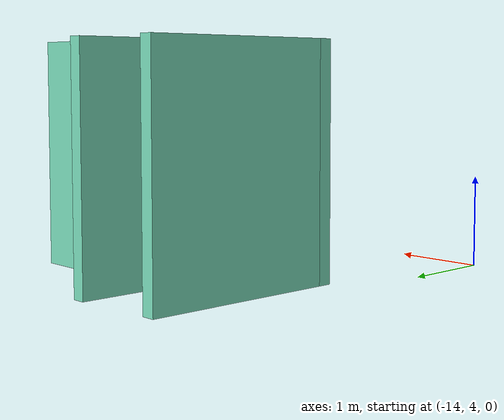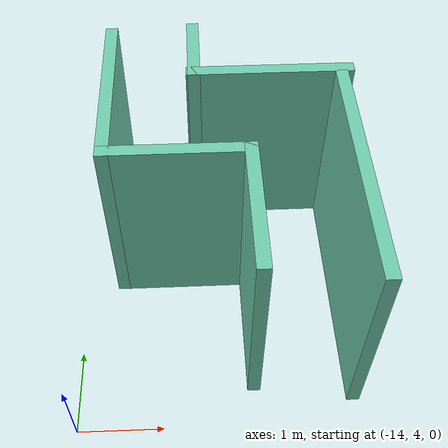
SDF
<?xml version='1.0'?>
<sdf version='1.6'>
  <model name='Lab1'>
    <pose frame=''>-12.1198 6.26782 0 0 -0 0</pose>
    <link name='Wall_12'>
      <collision name='Wall_12_Collision'>
        <geometry>
          <box>
            <size>3 0.15 2.5</size>
          </box>
        </geometry>
        <pose frame=''>0 0 1.25 0 -0 0</pose>
      </collision>
      <visual name='Wall_12_Visual'>
        <pose frame=''>0 0 1.25 0 -0 0</pose>
        <geometry>
          <box>
            <size>3 0.15 2.5</size>
          </box>
        </geometry>
        <material>
          <script>
            <uri>file://media/materials/scripts/gazebo.material</uri>
            <name>Gazebo/Grey</name>
          </script>
          <ambient>0.435294 0.796078 0.67451 1</ambient>
        </material>
        <meta>
          <layer>0</layer>
        </meta>
      </visual>
      <pose frame=''>1.33967 -0.5 0 0 -0 1.5708</pose>
    </link>
    <link name='Wall_15'>
      <collision name='Wall_15_Collision'>
        <geometry>
          <box>
            <size>1.02011 0.15 2.5</size>
          </box>
        </geometry>
        <pose frame=''>0 0 1.25 0 -0 0</pose>
      </collision>
      <visual name='Wall_15_Visual'>
        <pose frame=''>0 0 1.25 0 -0 0</pose>
        <geometry>
          <box>
            <size>1.02011 0.15 2.5</size>
          </box>
        </geometry>
        <material>
          <script>
            <uri>file://media/materials/scripts/gazebo.material</uri>
            <name>Gazebo/Grey</name>
          </script>
          <ambient>0.435294 0.796078 0.67451 1</ambient>
        </material>
        <meta>
          <layer>0</layer>
        </meta>
      </visual>
      <pose frame=''>-0.410334 1.48994 0 0 -0 -1.5708</pose>
    </link>
    <link name='Wall_16'>
      <collision name='Wall_16_Collision'>
        <geometry>
          <box>
            <size>2 0.15 2.5</size>
          </box>
        </geometry>
        <pose frame=''>0 0 1.25 0 -0 0</pose>
      </collision>
      <visual name='Wall_16_Visual'>
        <pose frame=''>0 0 1.25 0 -0 0</pose>
        <geometry>
          <box>
            <size>2 0.15 2.5</size>
          </box>
        </geometry>
        <material>
          <script>
            <uri>file://media/materials/scripts/gazebo.material</uri>
            <name>Gazebo/Grey</name>
          </script>
          <ambient>0.435294 0.796078 0.67451 1</ambient>
        </material>
        <meta>
          <layer>0</layer>
        </meta>
      </visual>
      <pose frame=''>0.494553 1.05489 0 0 -0 0</pose>
    </link>
    <link name='Wall_27'>
      <collision name='Wall_27_Collision'>
        <geometry>
          <box>
            <size>1.66955 0.15 2.5</size>
          </box>
        </geometry>
        <pose frame=''>0 0 1.25 0 -0 0</pose>
      </collision>
      <visual name='Wall_27_Visual'>
        <pose frame=''>0 0 1.25 0 -0 0</pose>
        <geometry>
          <box>
            <size>1.66955 0.15 2.5</size>
          </box>
        </geometry>
        <material>
          <script>
            <uri>file://media/materials/scripts/gazebo.material</uri>
            <name>Gazebo/Grey</name>
          </script>
          <ambient>0.435294 0.796078 0.67451 1</ambient>
        </material>
        <meta>
          <layer>0</layer>
        </meta>
      </visual>
      <pose frame=''>0.180447 -0.997669 0 0 -0 -1.5708</pose>
    </link>
    <link name='Wall_29'>
      <collision name='Wall_29_Collision'>
        <geometry>
          <box>
            <size>1.75 0.15 2.5</size>
          </box>
        </geometry>
        <pose frame=''>0 0 1.25 0 -0 0</pose>
      </collision>
      <visual name='Wall_29_Visual'>
        <pose frame=''>0 0 1.25 0 -0 0</pose>
        <geometry>
          <box>
            <size>1.75 0.15 2.5</size>
          </box>
        </geometry>
        <material>
          <script>
            <uri>file://media/materials/scripts/gazebo.material</uri>
            <name>Gazebo/Grey</name>
          </script>
          <ambient>0.435294 0.796078 0.67451 1</ambient>
        </material>
        <meta>
          <layer>0</layer>
        </meta>
      </visual>
      <pose frame=''>-0.619553 -0.237895 0 0 -0 3.14159</pose>
    </link>
    <link name='Wall_31'>
      <collision name='Wall_31_Collision'>
        <geometry>
          <box>
            <size>2.25 0.15 2.5</size>
          </box>
        </geometry>
        <pose frame=''>0 0 1.25 0 -0 0</pose>
      </collision>
      <visual name='Wall_31_Visual'>
        <pose frame=''>0 0 1.25 0 -0 0</pose>
        <geometry>
          <box>
            <size>2.25 0.15 2.5</size>
          </box>
        </geometry>
        <material>
          <script>
            <uri>file://media/materials/scripts/gazebo.material</uri>
            <name>Gazebo/Grey</name>
          </script>
          <ambient>0.435294 0.796078 0.67451 1</ambient>
        </material>
        <meta>
          <layer>0</layer>
        </meta>
      </visual>
      <pose frame=''>-1.41955 0.812104 0 0 -0 1.5708</pose>
    </link>
    <static>1</static>
  </model>
</sdf>
